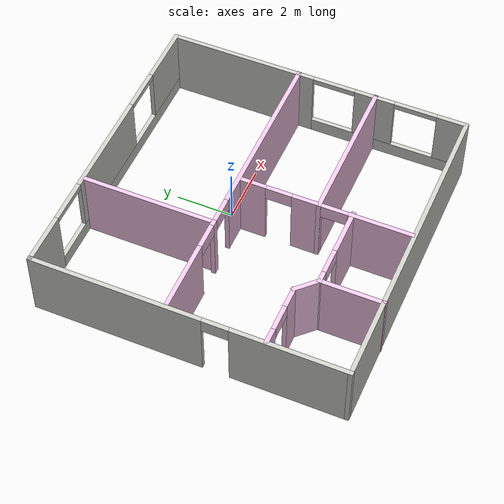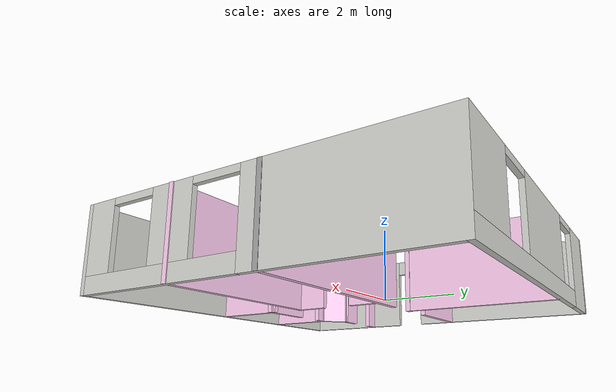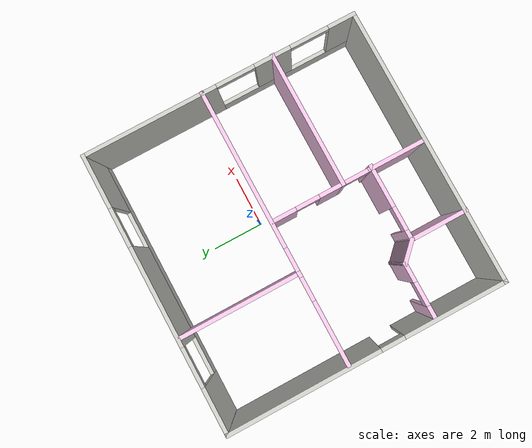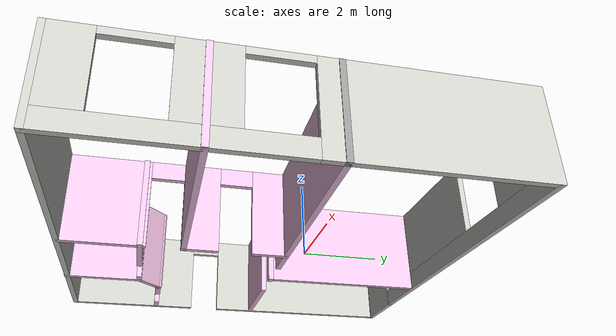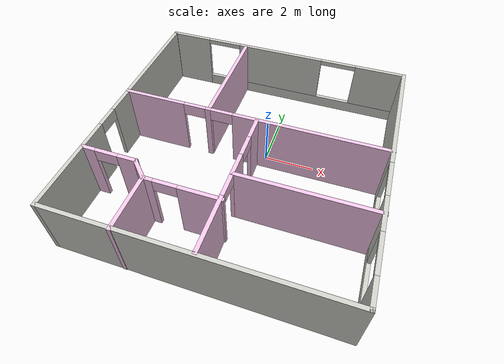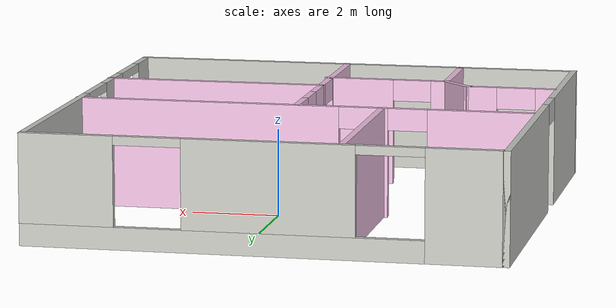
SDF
<?xml version='1.0'?>
<sdf version='1.7'>
  <model name='myworld2'>
    <pose>-0.540829 -1.11453 0 0 -0 0</pose>
    <link name='Wall_0'>
      <pose>-0.011532 5.30813 0 0 -0 0</pose>
      <visual name='Wall_0_Visual_0'>
        <pose>-4.46365 0 1.25 0 -0 0</pose>
        <geometry>
          <box>
            <size>1.82269 0.15 2.5</size>
          </box>
        </geometry>
        <material>
          <script>
            <uri>file://media/materials/scripts/gazebo.material</uri>
            <name>Gazebo/CeilingTiled</name>
          </script>
          <ambient>0.960784 0.643137 0.792157 1</ambient>
        </material>
        <meta>
          <layer>0</layer>
        </meta>
      </visual>
      <collision name='Wall_0_Collision_0'>
        <geometry>
          <box>
            <size>1.82269 0.15 2.5</size>
          </box>
        </geometry>
        <pose>-4.46365 0 1.25 0 -0 0</pose>
      </collision>
      <visual name='Wall_0_Visual_1'>
        <pose>0.911346 0 0.25 0 -0 0</pose>
        <geometry>
          <box>
            <size>8.92731 0.15 0.5</size>
          </box>
        </geometry>
        <material>
          <script>
            <uri>file://media/materials/scripts/gazebo.material</uri>
            <name>Gazebo/CeilingTiled</name>
          </script>
          <ambient>0.960784 0.643137 0.792157 1</ambient>
        </material>
        <meta>
          <layer>0</layer>
        </meta>
      </visual>
      <collision name='Wall_0_Collision_1'>
        <geometry>
          <box>
            <size>8.92731 0.15 0.5</size>
          </box>
        </geometry>
        <pose>0.911346 0 0.25 0 -0 0</pose>
      </collision>
      <visual name='Wall_0_Visual_2'>
        <pose>-0.146311 0 1.5 0 -0 0</pose>
        <geometry>
          <box>
            <size>3.81199 0.15 2</size>
          </box>
        </geometry>
        <material>
          <script>
            <uri>file://media/materials/scripts/gazebo.material</uri>
            <name>Gazebo/CeilingTiled</name>
          </script>
          <ambient>0.960784 0.643137 0.792157 1</ambient>
        </material>
        <meta>
          <layer>0</layer>
        </meta>
      </visual>
      <collision name='Wall_0_Collision_2'>
        <geometry>
          <box>
            <size>3.81199 0.15 2</size>
          </box>
        </geometry>
        <pose>-0.146311 0 1.5 0 -0 0</pose>
      </collision>
      <visual name='Wall_0_Visual_3'>
        <pose>4.31734 0 1.5 0 -0 0</pose>
        <geometry>
          <box>
            <size>2.11531 0.15 2</size>
          </box>
        </geometry>
        <material>
          <script>
            <uri>file://media/materials/scripts/gazebo.material</uri>
            <name>Gazebo/CeilingTiled</name>
          </script>
          <ambient>0.960784 0.643137 0.792157 1</ambient>
        </material>
        <meta>
          <layer>0</layer>
        </meta>
      </visual>
      <collision name='Wall_0_Collision_3'>
        <geometry>
          <box>
            <size>2.11531 0.15 2</size>
          </box>
        </geometry>
        <pose>4.31734 0 1.5 0 -0 0</pose>
      </collision>
      <visual name='Wall_0_Visual_4'>
        <pose>-2.80231 0 2.4 0 -0 0</pose>
        <geometry>
          <box>
            <size>1.5 0.15 0.2</size>
          </box>
        </geometry>
        <material>
          <script>
            <uri>file://media/materials/scripts/gazebo.material</uri>
            <name>Gazebo/CeilingTiled</name>
          </script>
          <ambient>0.960784 0.643137 0.792157 1</ambient>
        </material>
        <meta>
          <layer>0</layer>
        </meta>
      </visual>
      <collision name='Wall_0_Collision_4'>
        <geometry>
          <box>
            <size>1.5 0.15 0.2</size>
          </box>
        </geometry>
        <pose>-2.80231 0 2.4 0 -0 0</pose>
      </collision>
      <visual name='Wall_0_Visual_5'>
        <pose>2.50969 0 2.4 0 -0 0</pose>
        <geometry>
          <box>
            <size>1.5 0.15 0.2</size>
          </box>
        </geometry>
        <material>
          <script>
            <uri>file://media/materials/scripts/gazebo.material</uri>
            <name>Gazebo/CeilingTiled</name>
          </script>
          <ambient>0.960784 0.643137 0.792157 1</ambient>
        </material>
        <meta>
          <layer>0</layer>
        </meta>
      </visual>
      <collision name='Wall_0_Collision_5'>
        <geometry>
          <box>
            <size>1.5 0.15 0.2</size>
          </box>
        </geometry>
        <pose>2.50969 0 2.4 0 -0 0</pose>
      </collision>
    </link>
    <link name='Wall_1'>
      <pose>5.28847 0.008131 0 0 -0 -1.5708</pose>
      <visual name='Wall_1_Visual_0'>
        <pose>-2.75748 0 1.25 0 -0 0</pose>
        <geometry>
          <box>
            <size>5.23503 0.15 2.5</size>
          </box>
        </geometry>
        <material>
          <script>
            <uri>file://media/materials/scripts/gazebo.material</uri>
            <name>Gazebo/CeilingTiled</name>
          </script>
          <ambient>0.960784 0.643137 0.792157 1</ambient>
        </material>
        <meta>
          <layer>0</layer>
        </meta>
      </visual>
      <collision name='Wall_1_Collision_0'>
        <geometry>
          <box>
            <size>5.23503 0.15 2.5</size>
          </box>
        </geometry>
        <pose>-2.75748 0 1.25 0 -0 0</pose>
      </collision>
      <visual name='Wall_1_Visual_1'>
        <pose>2.61752 0 0.25 0 -0 0</pose>
        <geometry>
          <box>
            <size>5.51497 0.15 0.5</size>
          </box>
        </geometry>
        <material>
          <script>
            <uri>file://media/materials/scripts/gazebo.material</uri>
            <name>Gazebo/CeilingTiled</name>
          </script>
          <ambient>0.960784 0.643137 0.792157 1</ambient>
        </material>
        <meta>
          <layer>0</layer>
        </meta>
      </visual>
      <collision name='Wall_1_Collision_1'>
        <geometry>
          <box>
            <size>5.51497 0.15 0.5</size>
          </box>
        </geometry>
        <pose>2.61752 0 0.25 0 -0 0</pose>
      </collision>
      <visual name='Wall_1_Visual_2'>
        <pose>2.06995 0 1.5 0 -0 0</pose>
        <geometry>
          <box>
            <size>1.41984 0.15 2</size>
          </box>
        </geometry>
        <material>
          <script>
            <uri>file://media/materials/scripts/gazebo.material</uri>
            <name>Gazebo/CeilingTiled</name>
          </script>
          <ambient>0.960784 0.643137 0.792157 1</ambient>
        </material>
        <meta>
          <layer>0</layer>
        </meta>
      </visual>
      <collision name='Wall_1_Collision_2'>
        <geometry>
          <box>
            <size>1.41984 0.15 2</size>
          </box>
        </geometry>
        <pose>2.06995 0 1.5 0 -0 0</pose>
      </collision>
      <visual name='Wall_1_Visual_3'>
        <pose>4.82744 0 1.5 0 -0 0</pose>
        <geometry>
          <box>
            <size>1.09513 0.15 2</size>
          </box>
        </geometry>
        <material>
          <script>
            <uri>file://media/materials/scripts/gazebo.material</uri>
            <name>Gazebo/CeilingTiled</name>
          </script>
          <ambient>0.960784 0.643137 0.792157 1</ambient>
        </material>
        <meta>
          <layer>0</layer>
        </meta>
      </visual>
      <collision name='Wall_1_Collision_3'>
        <geometry>
          <box>
            <size>1.09513 0.15 2</size>
          </box>
        </geometry>
        <pose>4.82744 0 1.5 0 -0 0</pose>
      </collision>
      <visual name='Wall_1_Visual_4'>
        <pose>0.610032 0 2.4 0 -0 0</pose>
        <geometry>
          <box>
            <size>1.5 0.15 0.2</size>
          </box>
        </geometry>
        <material>
          <script>
            <uri>file://media/materials/scripts/gazebo.material</uri>
            <name>Gazebo/CeilingTiled</name>
          </script>
          <ambient>0.960784 0.643137 0.792157 1</ambient>
        </material>
        <meta>
          <layer>0</layer>
        </meta>
      </visual>
      <collision name='Wall_1_Collision_4'>
        <geometry>
          <box>
            <size>1.5 0.15 0.2</size>
          </box>
        </geometry>
        <pose>0.610032 0 2.4 0 -0 0</pose>
      </collision>
      <visual name='Wall_1_Visual_5'>
        <pose>3.52987 0 2.4 0 -0 0</pose>
        <geometry>
          <box>
            <size>1.5 0.15 0.2</size>
          </box>
        </geometry>
        <material>
          <script>
            <uri>file://media/materials/scripts/gazebo.material</uri>
            <name>Gazebo/CeilingTiled</name>
          </script>
          <ambient>0.960784 0.643137 0.792157 1</ambient>
        </material>
        <meta>
          <layer>0</layer>
        </meta>
      </visual>
      <collision name='Wall_1_Collision_5'>
        <geometry>
          <box>
            <size>1.5 0.15 0.2</size>
          </box>
        </geometry>
        <pose>3.52987 0 2.4 0 -0 0</pose>
      </collision>
    </link>
    <link name='Wall_10'>
      <pose>0.211534 -2.29564 0 0 -0 -1.5708</pose>
      <visual name='Wall_10_Visual_0'>
        <pose>-2.5191 0 1.25 0 -0 0</pose>
        <geometry>
          <box>
            <size>0.961793 0.15 2.5</size>
          </box>
        </geometry>
        <material>
          <script>
            <uri>file://media/materials/scripts/gazebo.material</uri>
            <name>Gazebo/Grey</name>
          </script>
          <ambient>0.960784 0.772549 0.905882 1</ambient>
        </material>
        <meta>
          <layer>0</layer>
        </meta>
      </visual>
      <collision name='Wall_10_Collision_0'>
        <geometry>
          <box>
            <size>0.961793 0.15 2.5</size>
          </box>
        </geometry>
        <pose>-2.5191 0 1.25 0 -0 0</pose>
      </collision>
      <visual name='Wall_10_Visual_1'>
        <pose>-0.63838 0 1.25 0 -0 0</pose>
        <geometry>
          <box>
            <size>0.999653 0.15 2.5</size>
          </box>
        </geometry>
        <material>
          <script>
            <uri>file://media/materials/scripts/gazebo.material</uri>
            <name>Gazebo/Grey</name>
          </script>
          <ambient>0.960784 0.772549 0.905882 1</ambient>
        </material>
        <meta>
          <layer>0</layer>
        </meta>
      </visual>
      <collision name='Wall_10_Collision_1'>
        <geometry>
          <box>
            <size>0.999653 0.15 2.5</size>
          </box>
        </geometry>
        <pose>-0.63838 0 1.25 0 -0 0</pose>
      </collision>
      <visual name='Wall_10_Visual_2'>
        <pose>1.88072 0 1.25 0 -0 0</pose>
        <geometry>
          <box>
            <size>2.23855 0.15 2.5</size>
          </box>
        </geometry>
        <material>
          <script>
            <uri>file://media/materials/scripts/gazebo.material</uri>
            <name>Gazebo/Grey</name>
          </script>
          <ambient>0.960784 0.772549 0.905882 1</ambient>
        </material>
        <meta>
          <layer>0</layer>
        </meta>
      </visual>
      <collision name='Wall_10_Collision_2'>
        <geometry>
          <box>
            <size>2.23855 0.15 2.5</size>
          </box>
        </geometry>
        <pose>1.88072 0 1.25 0 -0 0</pose>
      </collision>
      <visual name='Wall_10_Visual_3'>
        <pose>-1.58821 0 2.25 0 -0 0</pose>
        <geometry>
          <box>
            <size>0.9 0.15 0.5</size>
          </box>
        </geometry>
        <material>
          <script>
            <uri>file://media/materials/scripts/gazebo.material</uri>
            <name>Gazebo/Grey</name>
          </script>
          <ambient>0.960784 0.772549 0.905882 1</ambient>
        </material>
        <meta>
          <layer>0</layer>
        </meta>
      </visual>
      <collision name='Wall_10_Collision_3'>
        <geometry>
          <box>
            <size>0.9 0.15 0.5</size>
          </box>
        </geometry>
        <pose>-1.58821 0 2.25 0 -0 0</pose>
      </collision>
      <visual name='Wall_10_Visual_4'>
        <pose>0.311446 0 2.25 0 -0 0</pose>
        <geometry>
          <box>
            <size>0.9 0.15 0.5</size>
          </box>
        </geometry>
        <material>
          <script>
            <uri>file://media/materials/scripts/gazebo.material</uri>
            <name>Gazebo/Grey</name>
          </script>
          <ambient>0.960784 0.772549 0.905882 1</ambient>
        </material>
        <meta>
          <layer>0</layer>
        </meta>
      </visual>
      <collision name='Wall_10_Collision_4'>
        <geometry>
          <box>
            <size>0.9 0.15 0.5</size>
          </box>
        </geometry>
        <pose>0.311446 0 2.25 0 -0 0</pose>
      </collision>
    </link>
    <link name='Wall_12'>
      <collision name='Wall_12_Collision'>
        <geometry>
          <box>
            <size>5.25 0.15 2.5</size>
          </box>
        </geometry>
        <pose>0 0 1.25 0 -0 0</pose>
      </collision>
      <visual name='Wall_12_Visual'>
        <pose>0 0 1.25 0 -0 0</pose>
        <geometry>
          <box>
            <size>5.25 0.15 2.5</size>
          </box>
        </geometry>
        <material>
          <script>
            <uri>file://media/materials/scripts/gazebo.material</uri>
            <name>Gazebo/Grey</name>
          </script>
          <ambient>0.960784 0.772549 0.905882 1</ambient>
        </material>
        <meta>
          <layer>0</layer>
        </meta>
      </visual>
      <pose>2.76153 -2.07941 0 0 -0 0</pose>
    </link>
    <link name='Wall_14'>
      <pose>-4.22635 -2.60709 0 0 -0 0</pose>
      <visual name='Wall_14_Visual_0'>
        <pose>-0.837587 0 1.25 0 -0 0</pose>
        <geometry>
          <box>
            <size>0.574827 0.15 2.5</size>
          </box>
        </geometry>
        <material>
          <script>
            <uri>file://media/materials/scripts/gazebo.material</uri>
            <name>Gazebo/Grey</name>
          </script>
          <ambient>0.960784 0.772549 0.905882 1</ambient>
        </material>
        <meta>
          <layer>0</layer>
        </meta>
      </visual>
      <collision name='Wall_14_Collision_0'>
        <geometry>
          <box>
            <size>0.574827 0.15 2.5</size>
          </box>
        </geometry>
        <pose>-0.837587 0 1.25 0 -0 0</pose>
      </collision>
      <visual name='Wall_14_Visual_1'>
        <pose>0.737413 0 1.25 0 -0 0</pose>
        <geometry>
          <box>
            <size>0.775173 0.15 2.5</size>
          </box>
        </geometry>
        <material>
          <script>
            <uri>file://media/materials/scripts/gazebo.material</uri>
            <name>Gazebo/Grey</name>
          </script>
          <ambient>0.960784 0.772549 0.905882 1</ambient>
        </material>
        <meta>
          <layer>0</layer>
        </meta>
      </visual>
      <collision name='Wall_14_Collision_1'>
        <geometry>
          <box>
            <size>0.775173 0.15 2.5</size>
          </box>
        </geometry>
        <pose>0.737413 0 1.25 0 -0 0</pose>
      </collision>
      <visual name='Wall_14_Visual_2'>
        <pose>-0.100173 0 2.25 0 -0 0</pose>
        <geometry>
          <box>
            <size>0.9 0.15 0.5</size>
          </box>
        </geometry>
        <material>
          <script>
            <uri>file://media/materials/scripts/gazebo.material</uri>
            <name>Gazebo/Grey</name>
          </script>
          <ambient>0.960784 0.772549 0.905882 1</ambient>
        </material>
        <meta>
          <layer>0</layer>
        </meta>
      </visual>
      <collision name='Wall_14_Collision_2'>
        <geometry>
          <box>
            <size>0.9 0.15 0.5</size>
          </box>
        </geometry>
        <pose>-0.100173 0 2.25 0 -0 0</pose>
      </collision>
    </link>
    <link name='Wall_15'>
      <collision name='Wall_15_Collision'>
        <geometry>
          <box>
            <size>1 0.15 2.5</size>
          </box>
        </geometry>
        <pose>0 0 1.25 0 -0 0</pose>
      </collision>
      <visual name='Wall_15_Visual'>
        <pose>0 0 1.25 0 -0 0</pose>
        <geometry>
          <box>
            <size>1 0.15 2.5</size>
          </box>
        </geometry>
        <material>
          <script>
            <uri>file://media/materials/scripts/gazebo.material</uri>
            <name>Gazebo/Grey</name>
          </script>
          <ambient>0.960784 0.772549 0.905882 1</ambient>
        </material>
        <meta>
          <layer>0</layer>
        </meta>
      </visual>
      <pose>-2.87583 -2.90761 0 0 -0 -0.785398</pose>
    </link>
    <link name='Wall_16'>
      <pose>-1.15031 -3.20813 0 0 -0 0</pose>
      <visual name='Wall_16_Visual_0'>
        <pose>-1.27908 0 1.25 0 -0 0</pose>
        <geometry>
          <box>
            <size>0.441836 0.15 2.5</size>
          </box>
        </geometry>
        <material>
          <script>
            <uri>file://media/materials/scripts/gazebo.material</uri>
            <name>Gazebo/Grey</name>
          </script>
          <ambient>0.960784 0.772549 0.905882 1</ambient>
        </material>
        <meta>
          <layer>0</layer>
        </meta>
      </visual>
      <collision name='Wall_16_Collision_0'>
        <geometry>
          <box>
            <size>0.441836 0.15 2.5</size>
          </box>
        </geometry>
        <pose>-1.27908 0 1.25 0 -0 0</pose>
      </collision>
      <visual name='Wall_16_Visual_1'>
        <pose>0.670918 0 1.25 0 -0 0</pose>
        <geometry>
          <box>
            <size>1.65816 0.15 2.5</size>
          </box>
        </geometry>
        <material>
          <script>
            <uri>file://media/materials/scripts/gazebo.material</uri>
            <name>Gazebo/Grey</name>
          </script>
          <ambient>0.960784 0.772549 0.905882 1</ambient>
        </material>
        <meta>
          <layer>0</layer>
        </meta>
      </visual>
      <collision name='Wall_16_Collision_1'>
        <geometry>
          <box>
            <size>1.65816 0.15 2.5</size>
          </box>
        </geometry>
        <pose>0.670918 0 1.25 0 -0 0</pose>
      </collision>
      <visual name='Wall_16_Visual_2'>
        <pose>-0.608164 0 2.25 0 -0 0</pose>
        <geometry>
          <box>
            <size>0.9 0.15 0.5</size>
          </box>
        </geometry>
        <material>
          <script>
            <uri>file://media/materials/scripts/gazebo.material</uri>
            <name>Gazebo/Grey</name>
          </script>
          <ambient>0.960784 0.772549 0.905882 1</ambient>
        </material>
        <meta>
          <layer>0</layer>
        </meta>
      </visual>
      <collision name='Wall_16_Collision_2'>
        <geometry>
          <box>
            <size>0.9 0.15 0.5</size>
          </box>
        </geometry>
        <pose>-0.608164 0 2.25 0 -0 0</pose>
      </collision>
    </link>
    <link name='Wall_18'>
      <collision name='Wall_18_Collision'>
        <geometry>
          <box>
            <size>2.25 0.15 2.5</size>
          </box>
        </geometry>
        <pose>0 0 1.25 0 -0 0</pose>
      </collision>
      <visual name='Wall_18_Visual'>
        <pose>0 0 1.25 0 -0 0</pose>
        <geometry>
          <box>
            <size>2.25 0.15 2.5</size>
          </box>
        </geometry>
        <material>
          <script>
            <uri>file://media/materials/scripts/gazebo.material</uri>
            <name>Gazebo/Grey</name>
          </script>
          <ambient>0.960784 0.772549 0.905882 1</ambient>
        </material>
        <meta>
          <layer>0</layer>
        </meta>
      </visual>
      <pose>-2.57531 -4.25813 0 0 -0 -1.5708</pose>
    </link>
    <link name='Wall_2'>
      <collision name='Wall_2_Collision'>
        <geometry>
          <box>
            <size>10.75 0.15 2.5</size>
          </box>
        </geometry>
        <pose>0 0 1.25 0 -0 0</pose>
      </collision>
      <visual name='Wall_2_Visual'>
        <pose>0 0 1.25 0 -0 0</pose>
        <geometry>
          <box>
            <size>10.75 0.15 2.5</size>
          </box>
        </geometry>
        <material>
          <script>
            <uri>file://media/materials/scripts/gazebo.material</uri>
            <name>Gazebo/CeilingTiled</name>
          </script>
          <ambient>0.960784 0.643137 0.792157 1</ambient>
        </material>
        <meta>
          <layer>0</layer>
        </meta>
      </visual>
      <pose>-0.011532 -5.29187 0 0 -0 3.14159</pose>
    </link>
    <link name='Wall_20'>
      <collision name='Wall_20_Collision'>
        <geometry>
          <box>
            <size>4.5 0.15 2.5</size>
          </box>
        </geometry>
        <pose>0 0 1.25 0 -0 0</pose>
      </collision>
      <visual name='Wall_20_Visual'>
        <pose>0 0 1.25 0 -0 0</pose>
        <geometry>
          <box>
            <size>4.5 0.15 2.5</size>
          </box>
        </geometry>
        <material>
          <script>
            <uri>file://media/materials/scripts/gazebo.material</uri>
            <name>Gazebo/Grey</name>
          </script>
          <ambient>0.960784 0.772549 0.905882 1</ambient>
        </material>
        <meta>
          <layer>0</layer>
        </meta>
      </visual>
      <pose>-1.75848 3.02759 0 0 -0 -1.5708</pose>
    </link>
    <link name='Wall_3'>
      <pose>-5.31153 0.008131 0 0 -0 1.5708</pose>
      <visual name='Wall_3_Visual_0'>
        <pose>-3.39341 0 1.25 0 -0 0</pose>
        <geometry>
          <box>
            <size>3.96318 0.15 2.5</size>
          </box>
        </geometry>
        <material>
          <script>
            <uri>file://media/materials/scripts/gazebo.material</uri>
            <name>Gazebo/CeilingTiled</name>
          </script>
          <ambient>0.960784 0.643137 0.792157 1</ambient>
        </material>
        <meta>
          <layer>0</layer>
        </meta>
      </visual>
      <collision name='Wall_3_Collision_0'>
        <geometry>
          <box>
            <size>3.96318 0.15 2.5</size>
          </box>
        </geometry>
        <pose>-3.39341 0 1.25 0 -0 0</pose>
      </collision>
      <visual name='Wall_3_Visual_1'>
        <pose>2.43159 0 1.25 0 -0 0</pose>
        <geometry>
          <box>
            <size>5.88682 0.15 2.5</size>
          </box>
        </geometry>
        <material>
          <script>
            <uri>file://media/materials/scripts/gazebo.material</uri>
            <name>Gazebo/CeilingTiled</name>
          </script>
          <ambient>0.960784 0.643137 0.792157 1</ambient>
        </material>
        <meta>
          <layer>0</layer>
        </meta>
      </visual>
      <collision name='Wall_3_Collision_1'>
        <geometry>
          <box>
            <size>5.88682 0.15 2.5</size>
          </box>
        </geometry>
        <pose>2.43159 0 1.25 0 -0 0</pose>
      </collision>
      <visual name='Wall_3_Visual_2'>
        <pose>-0.96182 0 2.25 0 -0 0</pose>
        <geometry>
          <box>
            <size>0.9 0.15 0.5</size>
          </box>
        </geometry>
        <material>
          <script>
            <uri>file://media/materials/scripts/gazebo.material</uri>
            <name>Gazebo/CeilingTiled</name>
          </script>
          <ambient>0.960784 0.643137 0.792157 1</ambient>
        </material>
        <meta>
          <layer>0</layer>
        </meta>
      </visual>
      <collision name='Wall_3_Collision_2'>
        <geometry>
          <box>
            <size>0.9 0.15 0.5</size>
          </box>
        </geometry>
        <pose>-0.96182 0 2.25 0 -0 0</pose>
      </collision>
    </link>
    <link name='Wall_4'>
      <collision name='Wall_4_Collision'>
        <geometry>
          <box>
            <size>0.16 0.15 2.5</size>
          </box>
        </geometry>
        <pose>0 0 1.25 0 -0 0</pose>
      </collision>
      <visual name='Wall_4_Visual'>
        <pose>0 0 1.25 0 -0 0</pose>
        <geometry>
          <box>
            <size>0.16 0.15 2.5</size>
          </box>
        </geometry>
        <material>
          <script>
            <uri>file://media/materials/scripts/gazebo.material</uri>
            <name>Gazebo/Grey</name>
          </script>
          <ambient>1 1 1 1</ambient>
        </material>
        <meta>
          <layer>0</layer>
        </meta>
      </visual>
      <pose>-5.30653 5.30813 0 0 -0 0</pose>
    </link>
    <link name='Wall_6'>
      <pose>-0.011171 0.699534 0 0 -0 0</pose>
      <visual name='Wall_6_Visual_0'>
        <pose>-4.08499 0 1.25 0 -0 0</pose>
        <geometry>
          <box>
            <size>2.58002 0.15 2.5</size>
          </box>
        </geometry>
        <material>
          <script>
            <uri>file://media/materials/scripts/gazebo.material</uri>
            <name>Gazebo/Grey</name>
          </script>
          <ambient>0.960784 0.772549 0.905882 1</ambient>
        </material>
        <meta>
          <layer>0</layer>
        </meta>
      </visual>
      <collision name='Wall_6_Collision_0'>
        <geometry>
          <box>
            <size>2.58002 0.15 2.5</size>
          </box>
        </geometry>
        <pose>-4.08499 0 1.25 0 -0 0</pose>
      </collision>
      <visual name='Wall_6_Visual_1'>
        <pose>-1.78212 0 1.25 0 -0 0</pose>
        <geometry>
          <box>
            <size>0.22572 0.15 2.5</size>
          </box>
        </geometry>
        <material>
          <script>
            <uri>file://media/materials/scripts/gazebo.material</uri>
            <name>Gazebo/Grey</name>
          </script>
          <ambient>0.960784 0.772549 0.905882 1</ambient>
        </material>
        <meta>
          <layer>0</layer>
        </meta>
      </visual>
      <collision name='Wall_6_Collision_1'>
        <geometry>
          <box>
            <size>0.22572 0.15 2.5</size>
          </box>
        </geometry>
        <pose>-1.78212 0 1.25 0 -0 0</pose>
      </collision>
      <visual name='Wall_6_Visual_2'>
        <pose>2.30287 0 1.25 0 -0 0</pose>
        <geometry>
          <box>
            <size>6.14426 0.15 2.5</size>
          </box>
        </geometry>
        <material>
          <script>
            <uri>file://media/materials/scripts/gazebo.material</uri>
            <name>Gazebo/Grey</name>
          </script>
          <ambient>0.960784 0.772549 0.905882 1</ambient>
        </material>
        <meta>
          <layer>0</layer>
        </meta>
      </visual>
      <collision name='Wall_6_Collision_2'>
        <geometry>
          <box>
            <size>6.14426 0.15 2.5</size>
          </box>
        </geometry>
        <pose>2.30287 0 1.25 0 -0 0</pose>
      </collision>
      <visual name='Wall_6_Visual_3'>
        <pose>-2.34498 0 2.25 0 -0 0</pose>
        <geometry>
          <box>
            <size>0.9 0.15 0.5</size>
          </box>
        </geometry>
        <material>
          <script>
            <uri>file://media/materials/scripts/gazebo.material</uri>
            <name>Gazebo/Grey</name>
          </script>
          <ambient>0.960784 0.772549 0.905882 1</ambient>
        </material>
        <meta>
          <layer>0</layer>
        </meta>
      </visual>
      <collision name='Wall_6_Collision_3'>
        <geometry>
          <box>
            <size>0.9 0.15 0.5</size>
          </box>
        </geometry>
        <pose>-2.34498 0 2.25 0 -0 0</pose>
      </collision>
      <visual name='Wall_6_Visual_4'>
        <pose>-1.21926 0 2.25 0 -0 0</pose>
        <geometry>
          <box>
            <size>0.9 0.15 0.5</size>
          </box>
        </geometry>
        <material>
          <script>
            <uri>file://media/materials/scripts/gazebo.material</uri>
            <name>Gazebo/Grey</name>
          </script>
          <ambient>0.960784 0.772549 0.905882 1</ambient>
        </material>
        <meta>
          <layer>0</layer>
        </meta>
      </visual>
      <collision name='Wall_6_Collision_4'>
        <geometry>
          <box>
            <size>0.9 0.15 0.5</size>
          </box>
        </geometry>
        <pose>-1.21926 0 2.25 0 -0 0</pose>
      </collision>
    </link>
    <link name='Wall_7'>
      <collision name='Wall_7_Collision'>
        <geometry>
          <box>
            <size>0.16 0.15 2.5</size>
          </box>
        </geometry>
        <pose>0 0 1.25 0 -0 0</pose>
      </collision>
      <visual name='Wall_7_Visual'>
        <pose>0 0 1.25 0 -0 0</pose>
        <geometry>
          <box>
            <size>0.16 0.15 2.5</size>
          </box>
        </geometry>
        <material>
          <script>
            <uri>file://media/materials/scripts/gazebo.material</uri>
            <name>Gazebo/Grey</name>
          </script>
          <ambient>1 1 1 1</ambient>
        </material>
        <meta>
          <layer>0</layer>
        </meta>
      </visual>
      <pose>5.29365 0.699624 0 0 -0 0.018545</pose>
    </link>
    <static>1</static>
  </model>
</sdf>
